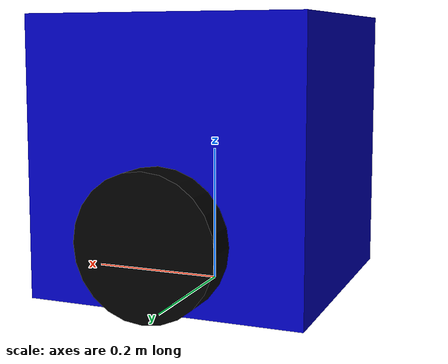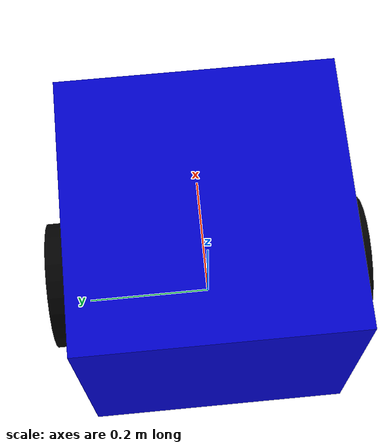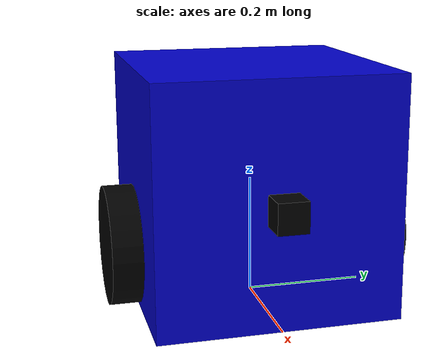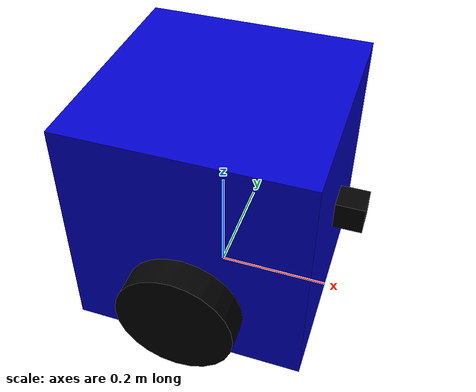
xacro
<?xml version="1.0"?>
<robot xmlns:xacro="http://www.ros.org/wiki/xacro" name="unicycle">

  <material name="blue">
    <color rgba="0 0 0.8 1"/>
  </material>
  <material name="black">
    <color rgba="0 0 0 1"/>
  </material>

  <link name="base_link">
    <visual>
      <origin xyz="0 0 0.2" rpy="0 0 0"/>
      <geometry>
        <box size="0.4 0.4 0.4"/>
      </geometry>
      <material name="blue"/>
    </visual>
  </link>

  <link name="left_wheel">
    <visual>
      <geometry>
        <cylinder length="0.05" radius="0.1"/>
      </geometry>
      <material name="black"/>
    </visual>
  </link>

  <joint name="left_wheel_joint" type="fixed">
    <parent link="base_link"/>
    <child link="left_wheel"/>
    <origin xyz="0 0.225 0.1" rpy="1.5708 0 0"/>
  </joint>

  <link name="right_wheel">
    <visual>
      <geometry>
        <cylinder length="0.05" radius="0.1"/>
      </geometry>
      <material name="black"/>
    </visual>
  </link>

  <joint name="right_wheel_joint" type="fixed">
    <parent link="base_link"/>
    <child link="right_wheel"/>
    <origin xyz="0 -0.225 0.1" rpy="1.5708 0 0"/>
  </joint>

  <link name="front_marker">
    <visual>
      <geometry>
        <box size="0.1 0.05 0.05"/>
      </geometry>
      <material name="black"/>
    </visual>
  </link>

  <joint name="marker_joint" type="fixed">
    <parent link="base_link"/>
    <child link="front_marker"/>
    <origin xyz="0.2 0 0.2" rpy="0 0 0"/>
  </joint>

</robot>
